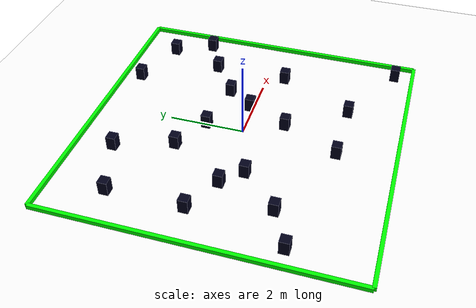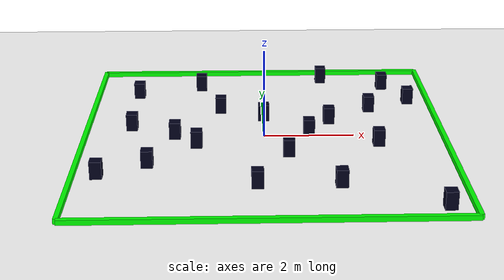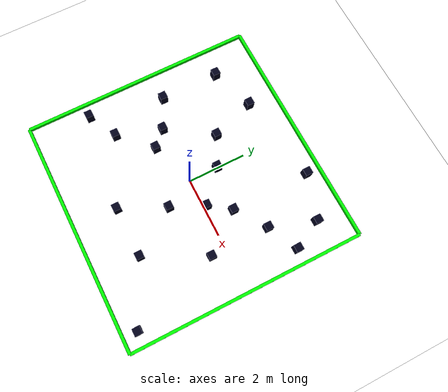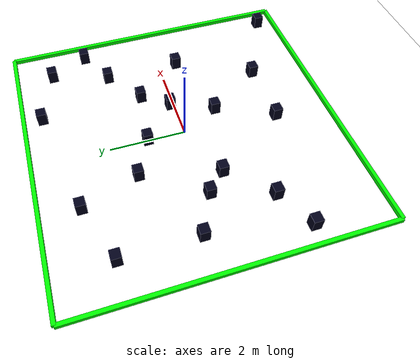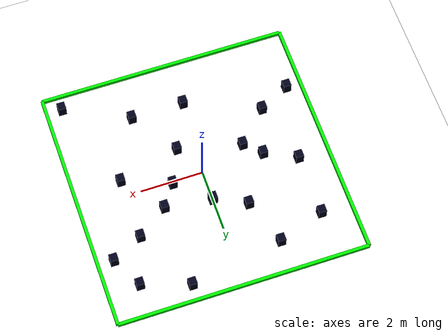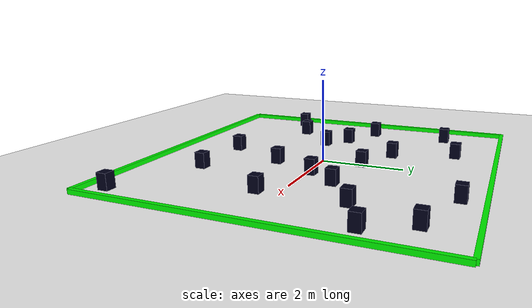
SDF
<sdf version='1.9'>
  <world name='wandering'>

    <physics name='1ms' type='ignored'>
      <max_step_size>0.001</max_step_size>
      <real_time_factor>1</real_time_factor>
      <real_time_update_rate>1000</real_time_update_rate>
    </physics>

    <plugin name='gz::sim::systems::Physics' filename='ignition-gazebo-physics-system'/>
    <plugin name='gz::sim::systems::UserCommands' filename='ignition-gazebo-user-commands-system'/>
    <plugin name='gz::sim::systems::SceneBroadcaster' filename='ignition-gazebo-scene-broadcaster-system'/>
    <plugin name='gz::sim::systems::Contact' filename='ignition-gazebo-contact-system'/>
    <plugin name='gz::sim::systems::Sensors' filename='ignition-gazebo-sensors-system'>
      <render_engine>ogre2</render_engine>
    </plugin>

    <gravity>0 0 -9.8</gravity>
    <magnetic_field>6e-06 2.3e-05 -4.2e-05</magnetic_field>
    <atmosphere type='adiabatic'/>
    <scene>
      <ambient>0.4 0.4 0.4 1</ambient>
      <background>0.7 0.7 0.7 1</background>
      <shadows>true</shadows>
    </scene>

    <light type="directional" name="sun">
      <cast_shadows>true</cast_shadows>
      <pose>0 0 10 0 0 0</pose>
      <diffuse>0.8 0.8 0.8 1</diffuse>
      <specular>0.2 0.2 0.2 1</specular>
      <attenuation>
        <range>1000</range>
        <constant>0.9</constant>
        <linear>0.01</linear>
        <quadratic>0.001</quadratic>
      </attenuation>
      <direction>-0.5 0.1 -0.9</direction>
  </light>

    <model name='ground_plane'>
      <static>true</static>
      <link name='ground_plane'>
        <visual name='visual'>
          <geometry>
            <plane>
              <normal>0 0 1</normal>
              <size>100 100</size>
            </plane>
          </geometry>
          <material>
            <ambient>1 1 1 1</ambient>
            <diffuse>1 1 1 1</diffuse>
            <specular>1 1 1 1</specular>
          </material>
        </visual>
        <collision name='collision'>
          <geometry>
            <plane>
              <normal>0 0 1</normal>
              <size>200 200</size>
            </plane>
          </geometry>
          <surface>
            <friction>
              <ode/>
            </friction>
            <bounce/>
            <contact/>
          </surface>
        </collision>
        <inertial>
          <mass>100</mass>
          <inertia>
            <ixx>1</ixx>
            <ixy>0</ixy>
            <ixz>0</ixz>
            <iyy>1</iyy>
            <iyz>0</iyz>
            <izz>1</izz>
          </inertia>
        </inertial>
        <enable_wind>false</enable_wind>
      </link>
      <self_collide>false</self_collide>
    </model>

    <include>
      <name>obstacle1</name>
      <uri>model://worlds/objects/obstacle.sdf</uri>
      <pose>-3.5 -2 0.125 0 0 0</pose>
    </include>

    <include>
      <name>obstacle2</name>
      <uri>model://worlds/objects/obstacle.sdf</uri>
      <pose>3.5 2 0.125 0 0 0</pose>
    </include>

    <include>
      <name>obstacle3</name>
      <uri>model://worlds/objects/obstacle.sdf</uri>
      <pose>-1.5 -0.5 0.125 0 0 0</pose>
    </include>

    <include>
      <name>obstacle4</name>
      <uri>model://worlds/objects/obstacle.sdf</uri>
      <pose>1.5 0.8 0.125 0 0 0</pose>
    </include>

    <include>
      <name>obstacle5</name>
      <uri>model://worlds/objects/obstacle.sdf</uri>
      <pose>-3 2.5 0.125 0 0 0</pose>
    </include>

    <include>
      <name>obstacle6</name>
      <uri>model://worlds/objects/obstacle.sdf</uri>
      <pose>2.5 1.5 0.125 0 0 0</pose>
    </include>

    <include>
      <name>obstacle7</name>
      <uri>model://worlds/objects/obstacle.sdf</uri>
      <pose>-1.5 3 0.125 0 0 0</pose>
    </include>

    <include>
      <name>obstacle8</name>
      <uri>model://worlds/objects/obstacle.sdf</uri>
      <pose>0 1 0.125 0 0 0</pose>
    </include>

    <include>
      <name>obstacle9</name>
      <uri>model://worlds/objects/obstacle.sdf</uri>
      <pose>3 3 0.125 0 0 0</pose>
    </include>

    <include>
      <name>obstacle10</name>
      <uri>model://worlds/objects/obstacle.sdf</uri>
      <pose>-2 0 0.125 0 0 0</pose>
    </include>

    <include>
      <name>obstacle11</name>
      <uri>model://worlds/objects/obstacle.sdf</uri>
      <pose>1.5 -2.5 0.125 0 0 0</pose>
    </include>

    <include>
      <name>obstacle12</name>
      <uri>model://worlds/objects/obstacle.sdf</uri>
      <pose>-3 0.5 0.125 0 0 0</pose>
    </include>

    <include>
      <name>obstacle13</name>
      <uri>model://worlds/objects/obstacle.sdf</uri>
      <pose>1.5 3.5 0.125 0 0 0</pose>
    </include>

    <include>
      <name>obstacle14</name>
      <uri>model://worlds/objects/obstacle.sdf</uri>
      <pose>-2.5 -1.5 0.125 0 0 0</pose>
    </include>

    <include>
      <name>obstacle15</name>
      <uri>model://worlds/objects/obstacle.sdf</uri>
      <pose>0.5 -1 0.125 0 0 0</pose>
    </include>

    <include>
      <name>obstacle16</name>
      <uri>model://worlds/objects/obstacle.sdf</uri>
      <pose>3.5 -3.5 0.125 0 0 0</pose>
    </include>

    <include>
      <name>obstacle17</name>
      <uri>model://worlds/objects/obstacle.sdf</uri>
      <pose>-1 1.5 0.125 0 0 0</pose>
    </include>

    <include>
      <name>obstacle18</name>
      <uri>model://worlds/objects/obstacle.sdf</uri>
      <pose>2.5 -0.5 0.125 0 0 0</pose>
    </include>

    <include>
      <name>obstacle19</name>
      <uri>model://worlds/objects/obstacle.sdf</uri>
      <pose>-0.2 -2.5 0.125 0 0 0</pose>
    </include>

    <include>
      <name>obstacle20</name>
      <uri>model://worlds/objects/obstacle.sdf</uri>
      <pose>1 0.1 0.125 0 0 0</pose>
    </include>

    <include>
      <name>border1</name>
      <uri>model://worlds/objects/borders.sdf</uri>
      <pose>0 4 0 0 0 0</pose>
    </include>

    <include>
      <name>border2</name>
      <uri>model://worlds/objects/borders.sdf</uri>
      <pose>0 -4 0 0 0 0</pose>
    </include>

    <include>
      <name>border3</name>
      <uri>model://worlds/objects/borders.sdf</uri>
      <pose>4 0 0 0 0 1.57</pose>
    </include>

    <include>
      <name>border4</name>
      <uri>model://worlds/objects/borders.sdf</uri>
      <pose>-4 0 0 0 0 1.57</pose>
    </include>

  </world>
</sdf>

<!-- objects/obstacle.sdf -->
<sdf version="1.9">
  <model name="obstacle">
    <link name='obstacle'>
      <visual name='visual'>
        <geometry>
          <box>
            <size>0.25 0.25 0.5</size>
          </box>
        </geometry>
        <material>
          <ambient>0.0 0.0 0.1 1</ambient>
          <diffuse>0.0 0.0 0.1 1</diffuse>
          <specular>0.0 0.0 0.1 1</specular>
        </material>
      </visual>
      <collision name='collision'>
        <geometry>
          <box>
            <size>0.25 0.25 0.5</size>
          </box>
        </geometry>
      </collision>
    </link>
  </model>
</sdf>

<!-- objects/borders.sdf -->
<sdf version="1.6">
  <model name="border">
    <static>true</static>
    <link name='border'>
      <visual name='visual'>
        <geometry>
          <box>
            <size>8 0.1 0.2</size>
          </box>
        </geometry>
        <material>
          <ambient>0.0 1.0 0.0 1</ambient>
          <diffuse>0.0 1.0 0.0 1</diffuse>
          <specular>0.0 1.0 0.0 1</specular>
        </material>
      </visual>
      <collision name='collision'>
        <geometry>
          <box>
            <size>8 0.1 0.2</size>
          </box>
        </geometry>
      </collision>
    </link>
  </model>
</sdf>
